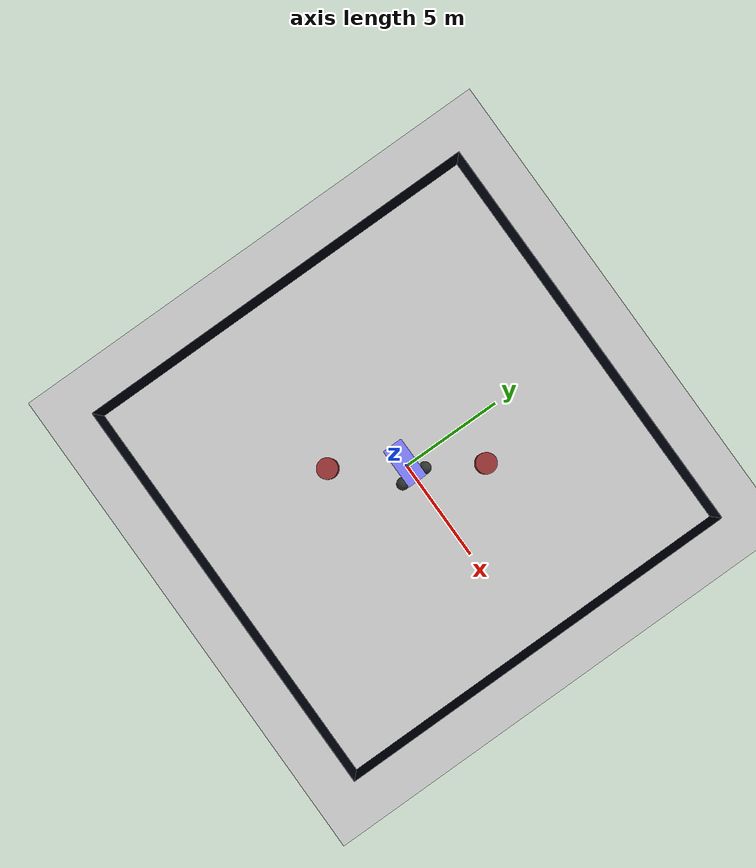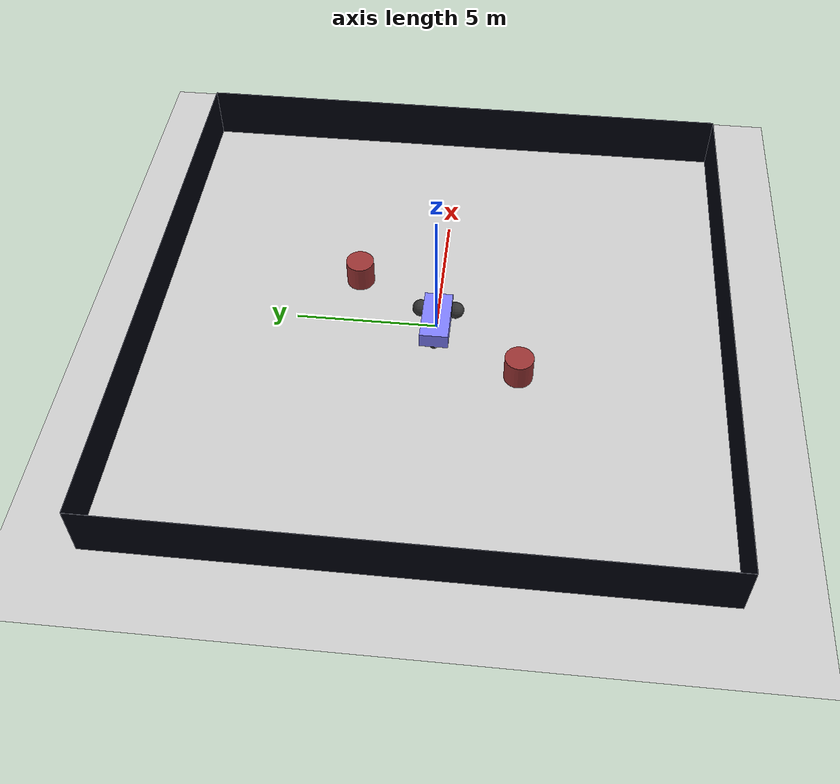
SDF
<?xml version="1.0" ?>
<sdf version="1.8">
  <world name="demo">
    <plugin
      filename="ignition-gazebo-physics-system"
      name="ignition::gazebo::systems::Physics">
    </plugin>
    <plugin
      filename="ignition-gazebo-sensors-system"
      name="ignition::gazebo::systems::Sensors">
      <render_engine>ogre2</render_engine>
    </plugin>
    <plugin
      filename="ignition-gazebo-scene-broadcaster-system"
      name="ignition::gazebo::systems::SceneBroadcaster">
    </plugin>
    <plugin
      filename="ignition-gazebo-user-commands-system"
      name="ignition::gazebo::systems::UserCommands">
    </plugin>
    <plugin
      filename="BasicSystem"
      name="ros_gz_example_gazebo::BasicSystem">
    </plugin>
    <plugin
      filename="FullSystem"
      name="ros_gz_example_gazebo::FullSystem">
    </plugin>

    <light name="sun" type="directional">
      <cast_shadows>true</cast_shadows>
      <pose>0 0 10 0 0 0</pose>
      <diffuse>0.8 0.8 0.8 1</diffuse>
      <specular>0.2 0.2 0.2 1</specular>
      <attenuation>
        <range>1000</range>
        <constant>0.9</constant>
        <linear>0.01</linear>
        <quadratic>0.001</quadratic>
      </attenuation>
      <direction>-0.5 0.1 -0.9</direction>
    </light>

    <model name="ground_plane">
      <static>true</static>
      <link name="link">
        <collision name="collision">
          <geometry>
            <plane>
              <normal>0 0 1</normal>
              <size>100 100</size>
            </plane>
          </geometry>
        </collision>
        <visual name="visual">
          <geometry>
            <plane>
              <normal>0 0 1</normal>
              <size>100 100</size>
            </plane>
          </geometry>
          <material>
            <ambient>0.8 0.8 0.8 1</ambient>
            <diffuse>0.8 0.8 0.8 1</diffuse>
            <specular>0.8 0.8 0.8 1</specular>
          </material>
        </visual>
      </link>
    </model>

    <model name="cylinder_obstacle1">
      <static>true</static> <!-- Set to true so it doesn't move -->
      <pose>2 3 0.5 0 0 0</pose> <!-- X Y Z Roll Pitch Yaw; place above the ground -->
      <link name="link">
        <collision name="collision">
          <geometry>
            <cylinder>
              <radius>0.5</radius>
              <length>1.0</length>
            </cylinder>
          </geometry>
        </collision>
        <visual name="visual">
          <geometry>
            <cylinder>
              <radius>0.5</radius>
              <length>1.0</length>
            </cylinder>
          </geometry>
          <material>
            <ambient>0.6 0.2 0.2 1</ambient>
            <diffuse>0.6 0.2 0.2 1</diffuse>
            <specular>0.1 0.1 0.1 1</specular>
          </material>
        </visual>
      </link>
    </model>

    <model name="cylinder_obstacle2">
      <static>true</static> <!-- Set to true so it doesn't move -->
      <pose>-2 -3 0.5 0 0 0</pose> <!-- X Y Z Roll Pitch Yaw; place above the ground -->
      <link name="link">
        <collision name="collision">
          <geometry>
            <cylinder>
              <radius>0.5</radius>
              <length>1.0</length>
            </cylinder>
          </geometry>
        </collision>
        <visual name="visual">
          <geometry>
            <cylinder>
              <radius>0.5</radius>
              <length>1.0</length>
            </cylinder>
          </geometry>
          <material>
            <ambient>0.6 0.2 0.2 1</ambient>
            <diffuse>0.6 0.2 0.2 1</diffuse>
            <specular>0.1 0.1 0.1 1</specular>
          </material>
        </visual>
      </link>
    </model>

    <model name='border'>
      <pose>0 0 1 0 0 0</pose>
      <static>true</static>
      <link name='wall1'>
          <pose>-10.005 0 0 0 0 0</pose>
          <static>true</static>
          <collision name='wall1_collision'>
              <geometry>
                  <box>
                      <size>0.01 20 2</size>
                  </box>
              </geometry>
          </collision>
          <visual name='wall1_visual'>
              <geometry>
                  <box>
                      <size>0.01 20 2</size>
                  </box>
              </geometry>
              <material>
                  <ambient>0.1 0.1 0.1 1</ambient>
                  <diffuse>0 0.01 0.05 1</diffuse>
                  <specular>0 0.01 0.05 1</specular>
              </material>
          </visual>
      </link>
      <link name='wall2'>
          <pose>10.005 0 0 0 0 0</pose>
          <static>true</static>
          <collision name='wall2_collision'>
              <geometry>
                  <box>
                      <size>0.01 20 2</size>
                  </box>
              </geometry>
          </collision>
          <visual name='wall2_visual'>
              <geometry>
                  <box>
                      <size>0.01 20 2</size>
                  </box>
              </geometry>
              <material>
                  <ambient>0.1 0.1 0.1 1</ambient>
                  <diffuse>0 0.01 0.05 1</diffuse>
                  <specular>0 0.01 0.05 1</specular>
              </material>
          </visual>
      </link>
      <link name='wall3'>
          <pose>0 10.005 0 0 0 0</pose>
          <static>true</static>
          <collision name='wall3_collision'>
              <geometry>
                  <box>
                      <size>20 0.01 2</size>
                  </box>
              </geometry>
          </collision>
          <visual name='wall3_visual'>
              <geometry>
                  <box>
                      <size>20 0.01 2</size>
                  </box>
              </geometry>
              <material>
                  <ambient>0.1 0.1 0.1 1</ambient>
                  <diffuse>0 0.01 0.05 1</diffuse>
                  <specular>0 0.01 0.05 1</specular>
              </material>
          </visual>
      </link>
      <link name='wall4'>
          <pose>0 -10.005 0 0 0 0</pose>
          <static>true</static>
          <collision name='wall4_collision'>
              <geometry>
                  <box>
                      <size>20 0.01 2</size>
                  </box>
              </geometry>
              <material>
                  <ambient>0.1 0.1 0.1 1</ambient>
                  <diffuse>0 0.01 0.05 1</diffuse>
                  <specular>0 0.01 0.05 1</specular>
              </material>
          </collision>
          <visual name='wall4_visual'>
              <geometry>
                  <box>
                      <size>20 0.01 2</size>
                  </box>
              </geometry>
              <material>
                  <ambient>0.1 0.1 0.1 1</ambient>
                  <diffuse>0 0.01 0.05 1</diffuse>
                  <specular>0 0.01 0.05 1</specular>
              </material>
          </visual>
      </link>
    </model>

    <model name="diff_drive">
      <self_collide>true</self_collide>
      <pose>0 0 0.35 0 0 0</pose>
      <include merge="true">
        <uri>package://ros_gz_example_description/models/diff_drive</uri>
      </include>

      <plugin
        filename="ignition-gazebo-joint-state-publisher-system"
        name="ignition::gazebo::systems::JointStatePublisher">
      </plugin>

      <plugin
        filename="ignition-gazebo-pose-publisher-system"
        name="ignition::gazebo::systems::PosePublisher">
        <publish_link_pose>true</publish_link_pose>
        <use_pose_vector_msg>true</use_pose_vector_msg>
        <static_publisher>true</static_publisher>
        <static_update_frequency>1</static_update_frequency>
      </plugin>

      <plugin
        filename="ignition-gazebo-odometry-publisher-system"
        name="ignition::gazebo::systems::OdometryPublisher">
        <odom_frame>diff_drive/odom</odom_frame>
        <robot_base_frame>diff_drive</robot_base_frame>
      </plugin>
    </model>

  </world>
</sdf>

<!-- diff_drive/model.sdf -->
<sdf version="1.8">
    <model name='diff_drive'>
      <link name='chassis'>
        <pose>-0.151427 -0 0.175 0 -0 0</pose>
        <inertial>
          <mass>1.14395</mass>
          <inertia>
            <ixx>0.126164</ixx>
            <ixy>0</ixy>
            <ixz>0</ixz>
            <iyy>0.416519</iyy>
            <iyz>0</iyz>
            <izz>0.481014</izz>
          </inertia>
        </inertial>
        <visual name='visual_chassis'>
          <geometry>
            <box>
              <size>2.01142 1 0.568726</size>
            </box>
          </geometry>
          <material>
            <ambient>0.5 0.5 1.0 1</ambient>
            <diffuse>0.5 0.5 1.0 1</diffuse>
            <specular>0.0 0.0 1.0 1</specular>
          </material>
        </visual>
        <collision name='collision_chassis'>
          <geometry>
            <box>
              <size>2.01142 1 0.568726</size>
            </box>
          </geometry>
        </collision>
      </link>

      <link name='left_wheel'>
        <pose>0.554283 0.625029 -0.025 -1.5707 0 0</pose>
        <inertial>
          <mass>2</mass>
          <inertia>
            <ixx>0.145833</ixx>
            <ixy>0</ixy>
            <ixz>0</ixz>
            <iyy>0.145833</iyy>
            <iyz>0</iyz>
            <izz>0.125</izz>
          </inertia>
        </inertial>
        <visual name='visual_left_wheel'>
          <geometry>
            <sphere>
              <radius>0.3</radius>
            </sphere>
          </geometry>
          <material>
            <ambient>0.2 0.2 0.2 1</ambient>
            <diffuse>0.2 0.2 0.2 1</diffuse>
            <specular>0.2 0.2 0.2 1</specular>
          </material>
        </visual>
        <collision name='collision_left_wheel'>
          <geometry>
            <sphere>
              <radius>0.3</radius>
            </sphere>
          </geometry>
        </collision>
      </link>

      <link name='right_wheel'>
        <pose>0.554282 -0.625029 -0.025 -1.5707 0 0</pose>
        <inertial>
          <mass>2</mass>
          <inertia>
            <ixx>0.145833</ixx>
            <ixy>0</ixy>
            <ixz>0</ixz>
            <iyy>0.145833</iyy>
            <iyz>0</iyz>
            <izz>0.125</izz>
          </inertia>
        </inertial>
        <visual name='visual_right_wheel'>
          <geometry>
            <sphere>
              <radius>0.3</radius>
            </sphere>
          </geometry>
          <material>
            <ambient>0.2 0.2 0.2 1</ambient>
            <diffuse>0.2 0.2 0.2 1</diffuse>
            <specular>0.2 0.2 0.2 1</specular>
          </material>
        </visual>
        <collision name='collision_right_wheel'>
          <geometry>
            <sphere>
              <radius>0.3</radius>
            </sphere>
          </geometry>
        </collision>
      </link>

      <link name='caster'>
        <pose>-0.957138 -0 -0.125 0 -0 0</pose>
        <inertial>
          <mass>1</mass>
          <inertia>
            <ixx>0.1</ixx>
            <ixy>0</ixy>
            <ixz>0</ixz>
            <iyy>0.1</iyy>
            <iyz>0</iyz>
            <izz>0.1</izz>
          </inertia>
        </inertial>
        <visual name='visual_caster'>
          <geometry>
            <sphere>
              <radius>0.2</radius>
            </sphere>
          </geometry>
          <material>
            <ambient>0.2 0.2 0.2 1</ambient>
            <diffuse>0.2 0.2 0.2 1</diffuse>
            <specular>0.2 0.2 0.2 1</specular>
          </material>
        </visual>
        <collision name='collision_caster'>
          <geometry>
            <sphere>
              <radius>0.2</radius>
            </sphere>
          </geometry>
        </collision>
      </link>

      <link name="lidar_link">
        <pose>0.1 0 0.12 0 0 0</pose>
        <!-- X offset: 0.1, Z offset: 0.12 -->
        <!-- Edit the line ABOVE! -->
        <!-- Values are: -->
        <!-- x y z roll pitch yaw -->
        <inertial>
          <mass>0.1</mass>
          <inertia>
            <ixx>0.000166667</ixx>
            <iyy>0.000166667</iyy>
            <izz>0.000166667</izz>
          </inertia>
        </inertial>
        <collision name="collision">
          <geometry>
            <box>
              <size>0.1 0.1 0.1</size>
            </box>
          </geometry>
        </collision>
        <visual name="visual">
          <geometry>
            <box>
              <size>0.1 0.1 0.1</size>
            </box>
          </geometry>
        </visual>
        <sensor name='gpu_lidar' type='gpu_lidar'>
          <pose>0 0 0 0 0 0</pose>
          <topic>scan</topic>
          <ignition_frame_id>diff_drive/lidar_link</ignition_frame_id>
          <update_rate>10</update_rate>
          <lidar>
            <scan>
              <horizontal>
                <samples>1080</samples>
                <resolution>1</resolution>
                <min_angle>-3.1241390705108643</min_angle>
                <max_angle>3.1415927410125732</max_angle>
              </horizontal>
              <vertical>
                <samples>1</samples>
                <resolution>1</resolution>
                <min_angle>0.0</min_angle>
                <max_angle>0.0</max_angle>
              </vertical>
            </scan>
            <range>
              <min>0.08</min>
              <max>10.0</max>
              <resolution>0.01</resolution>
            </range>
          </lidar>
          <visualize>true</visualize>
        </sensor>
      </link>

      <joint name='lidar_joint' type='fixed'>
        <parent>chassis</parent>
        <child>lidar_link</child>
      </joint>

      <joint name='left_wheel_joint' type='revolute'>
        <parent>chassis</parent>
        <child>left_wheel</child>
        <axis>
          <xyz>0 0 1</xyz>
          <limit>
            <lower>-1.79769e+308</lower>
            <upper>1.79769e+308</upper>
          </limit>
        </axis>
      </joint>

      <joint name='right_wheel_joint' type='revolute'>
        <parent>chassis</parent>
        <child>right_wheel</child>
        <axis>
          <xyz>0 0 1</xyz>
          <limit>
            <lower>-1.79769e+308</lower>
            <upper>1.79769e+308</upper>
          </limit>
        </axis>
      </joint>

      <joint name='caster_wheel' type='ball'>
        <parent>chassis</parent>
        <child>caster</child>
      </joint>

      <plugin
        filename="ignition-gazebo-diff-drive-system"
        name="ignition::gazebo::systems::DiffDrive">
        <left_joint>left_wheel_joint</left_joint>
        <right_joint>right_wheel_joint</right_joint>
        <wheel_separation>1.25</wheel_separation>
        <wheel_radius>0.3</wheel_radius>
        <odom_publish_frequency>1</odom_publish_frequency>
        <max_linear_acceleration>1</max_linear_acceleration>
        <min_linear_acceleration>-1</min_linear_acceleration>
        <max_angular_acceleration>2</max_angular_acceleration>
        <min_angular_acceleration>-2</min_angular_acceleration>
        <max_linear_velocity>0.5</max_linear_velocity>
        <min_linear_velocity>-0.5</min_linear_velocity>
        <max_angular_velocity>1</max_angular_velocity>
        <min_angular_velocity>-1</min_angular_velocity>
      </plugin>
    </model>
</sdf>
